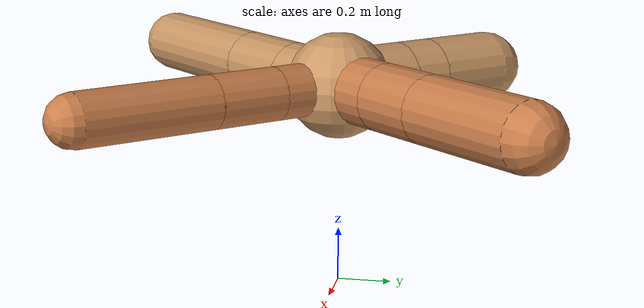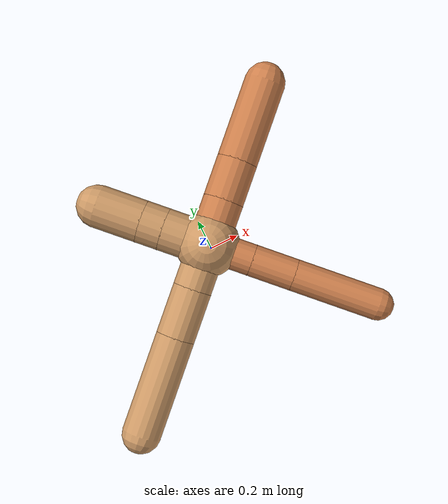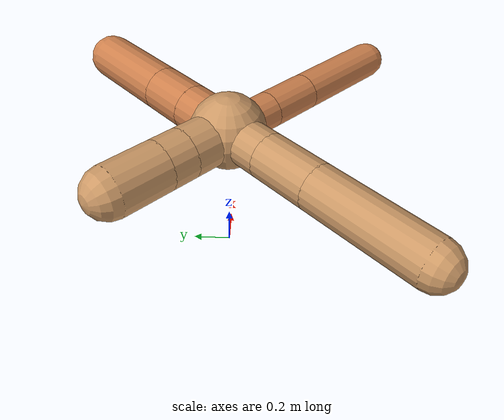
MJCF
<?xml version="1.0" ?>
<mujoco model="ant">

	<compiler angle="degree" coordinate="local" inertiafromgeom="true"/>

	<option integrator="RK4" timestep="0.01"/>

	<custom>

		<numeric data="0.0 0.0 0.55 1.0 0.0 0.0 0.0 0.0 1.0 0.0 -1.0 0.0 -1.0 0.0 1.0" name="init_qpos"/>

	</custom>

	<default>

		<joint armature="1" damping="1" limited="true"/>

		<geom conaffinity="0" condim="3" density="5.0" friction="1.5 0.1 0.1" margin="0.01" rgba="0.8 0.6 0.4 1"/>

	</default>

	<worldbody>

		<body name="torso" pos="0 0 0.75">

			<geom name="torso_geom" pos="0 0 0" size="0.19653744633872325" type="sphere"/>

			<!--joint armature="0" damping="0" limited="false" margin="0.01" name="root" pos="0 0 0" type="free"/-->

			<body name="front_left_leg" pos="0 0 0">

				<geom fromto="0 0 0 0.2 0.2 0" name="aux_1_geom" size="0.12542351717871403" type="capsule" rgba=".8 .5 .3 1"/>

				<body name="aux_1" pos="0.2 0.2 0">

					<joint axis="0 0 1" name="hip_1" pos="0.0 0.0 0.0" range="-40 40" type="hinge"/>

					<geom fromto="0 0 0 0.17899267359138835 0.17899267359138835 0" name="left_leg_geom" size="0.12542351717871403" type="capsule" rgba=".8 .5 .3 1"/>

					<body pos="0.17899267359138835 0.17899267359138835 0" name="front_left_foot">

						<joint axis="-1 1 0" name="ankle_1" pos="0.0 0.0 0.0" range="30 100" type="hinge"/>

						<geom fromto="0 0 0 0.3579853471827767 0.3579853471827767 0" name="left_ankle_geom" size="0.12542351717871403" type="capsule" rgba=".8 .5 .3 1"/>

					</body>

				</body>

			</body>

			<body name="front_right_leg" pos="0 0 0">

				<geom fromto="0 0 0 -0.2 0.2 0" name="aux_2_geom" size="0.13281131223421264" type="capsule"/>

				<body name="aux_2" pos="-0.2 0.2 0">

					<joint axis="0 0 1" name="hip_2" pos="0.0 0.0 0.0" range="-40 40" type="hinge"/>

					<geom fromto="0 0 0 -0.09926532954644236 0.09926532954644236 0" name="right_leg_geom" size="0.13281131223421264" type="capsule"/>

					<body pos="-0.09926532954644236 0.09926532954644236 0" name="front_right_foot">

						<joint axis="1 1 0" name="ankle_2" pos="0.0 0.0 0.0" range="-100 -30" type="hinge"/>

						<geom fromto="0 0 0 -0.19853065909288473 0.19853065909288473 0" name="right_ankle_geom" size="0.13281131223421264" type="capsule"/>

					</body>

				</body>

			</body>

			<body name="left_back_leg" pos="0 0 0">

				<geom fromto="0 0 0 -0.2 -0.2 0" name="aux_3_geom" size="0.11971045807666282" type="capsule"/>

				<body name="aux_3" pos="-0.2 -0.2 0">

					<joint axis="0 0 1" name="hip_3" pos="0.0 0.0 0.0" range="-40 40" type="hinge"/>

					<geom fromto="0 0 0 -0.21809553076733554 -0.21809553076733554 0" name="back_leg_geom" size="0.11971045807666282" type="capsule"/>

					<body pos="-0.21809553076733554 -0.21809553076733554 0" name="left_back_foot">

						<joint axis="-1 1 0" name="ankle_3" pos="0.0 0.0 0.0" range="-100 -30" type="hinge"/>

						<geom fromto="0 0 0 -0.4361910615346711 -0.4361910615346711 0" name="third_ankle_geom" size="0.11971045807666282" type="capsule"/>

					</body>

				</body>

			</body>

			<body name="right_back_leg" pos="0 0 0">

				<geom fromto="0 0 0 0.2 -0.2 0" name="aux_4_geom" size="0.09866121500192923" type="capsule" rgba=".8 .5 .3 1"/>

				<body name="aux_4" pos="0.2 -0.2 0">

					<joint axis="0 0 1" name="hip_4" pos="0.0 0.0 0.0" range="-40 40" type="hinge"/>

					<geom fromto="0 0 0 0.18903887274274137 -0.18903887274274137 0" name="rightback_leg_geom" size="0.09866121500192923" type="capsule" rgba=".8 .5 .3 1"/>

					<body pos="0.18903887274274137 -0.18903887274274137 0" name="right_back_foot">

						<joint axis="1 1 0" name="ankle_4" pos="0.0 0.0 0.0" range="30 100" type="hinge"/>

						<geom fromto="0 0 0 0.37807774548548273 -0.37807774548548273 0" name="fourth_ankle_geom" size="0.09866121500192923" type="capsule" rgba=".8 .5 .3 1"/>

					</body>

				</body>

			</body>

		</body>

	</worldbody>

	<actuator>

		<motor ctrllimited="true" ctrlrange="-1.0 1.0" joint="hip_4" gear="150"/>

		<motor ctrllimited="true" ctrlrange="-1.0 1.0" joint="ankle_4" gear="150"/>

		<motor ctrllimited="true" ctrlrange="-1.0 1.0" joint="hip_1" gear="150"/>

		<motor ctrllimited="true" ctrlrange="-1.0 1.0" joint="ankle_1" gear="150"/>

		<motor ctrllimited="true" ctrlrange="-1.0 1.0" joint="hip_2" gear="150"/>

		<motor ctrllimited="true" ctrlrange="-1.0 1.0" joint="ankle_2" gear="150"/>

		<motor ctrllimited="true" ctrlrange="-1.0 1.0" joint="hip_3" gear="150"/>

		<motor ctrllimited="true" ctrlrange="-1.0 1.0" joint="ankle_3" gear="150"/>

	</actuator>

</mujoco>
